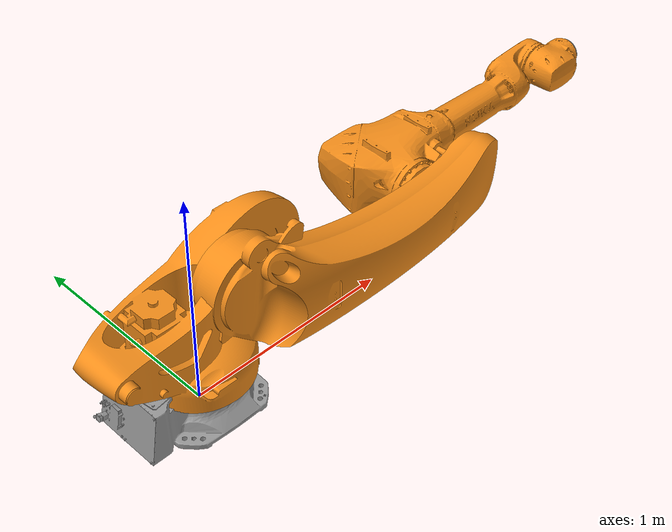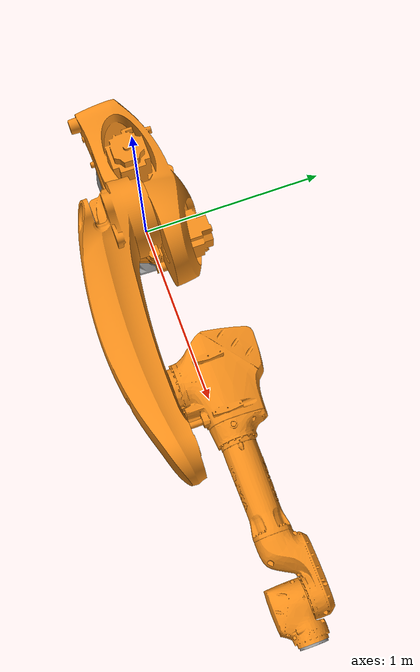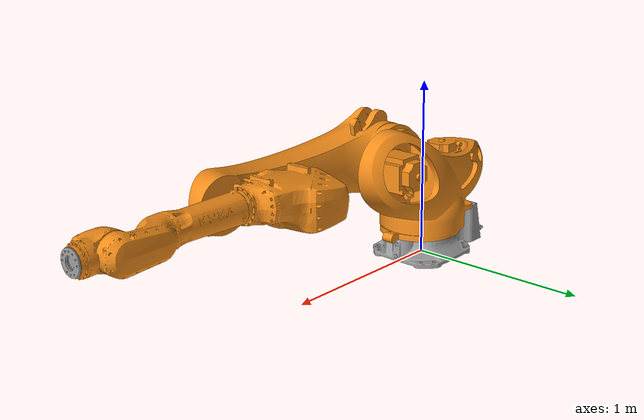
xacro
<?xml version="1.0"?>
<!--Generates a urdf from the macro in kr16_2_macro.xacro -->
<robot name="kuka_kr70_r2100" xmlns:xacro="http://wiki.ros.org/xacro">

  <link name="world"/>
  <joint name="world_joint" type="fixed">
    <parent link="world"/>
    <child link="base_link"/>
  </joint>
  <xacro:include filename="$(find kuka_kr70_support)/urdf/kr70_r2100_macro.xacro" />
  <xacro:kuka_kr70_r2100 prefix=""/>
      <gazebo>
      <plugin name="ros_control" filename="libgazebo_ros_control.so">
		    <robotParam>robot_description</robotParam>
        <controlPeriod>0.001</controlPeriod>
	      <robotSimType>gazebo_ros_control/DefaultRobotHWSim</robotSimType>
		    <legacyModeNS>true</legacyModeNS>
      </plugin>
    </gazebo>
</robot>

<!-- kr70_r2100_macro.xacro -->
<robot xmlns:xacro="http://wiki.ros.org/xacro">
  <xacro:include filename="$(find kuka_resources)/urdf/common_constants.xacro"/>
  <xacro:include filename="$(find kuka_resources)/urdf/common_materials.xacro"/>

  <xacro:macro name="kuka_kr70_r2100" params="prefix">
    <!-- LINKS -->
    <!-- base link -->

    <xacro:macro name="cylinder_inertia_z_aligned" params="m r h">
      <inertia  ixx="${m*(3*r*r+h*h)/12}" ixy = "0" ixz = "0"
                iyy="${m*(3*r*r+h*h)/12}" iyz = "0"
                izz="${m*r*r/2}" />
    </xacro:macro>

    <link name="${prefix}base_link">
      <inertial>
        <origin xyz="0 0 0.1" rpy="0 0 0"/>
        <mass value="200"/>
         <xacro:cylinder_inertia_z_aligned  m="200" r="0.3" h="0.2" />
      </inertial>
      <visual>
        <origin xyz="0 0 0" rpy="0 0 0"/>
        <geometry>
          <mesh filename="package://kuka_kr70_support/meshes/kuka_kr70_r2100/visual/base_link.stl" />
        </geometry>
        <xacro:material_kuka_pedestal />
      </visual>
      <collision>
        <origin xyz="0 0 0" rpy="0 0 0"/>
        <geometry>
          <mesh filename="package://kuka_kr70_support/meshes/kuka_kr70_r2100/collision/base_link.stl" />
        </geometry>
      </collision>
    </link>
    <gazebo reference="${prefix}base_link">
      <material>Gazebo/Gray</material>
    </gazebo>
    <!-- link 1 (A1) -->
    <link name="${prefix}link_1">
      <inertial>
        <origin xyz="0 0 0" rpy="0 0 0"/>
        <mass value="150"/>
         <xacro:cylinder_inertia_z_aligned  m="150" r="0.15" h="0.5" />
      </inertial>
      <visual>
        <origin xyz="0 0 0" rpy="0 0 0"/>
        <geometry>
          <mesh filename="package://kuka_kr70_support/meshes/kuka_kr70_r2100/visual/link_1.stl" />
        </geometry>
        <xacro:material_kuka_orange />
      </visual>
      <collision>
        <origin xyz="0 0 0" rpy="0 0 0"/>
        <geometry>
          <mesh filename="package://kuka_kr70_support/meshes/kuka_kr70_r2100/collision/link_1.stl" />
        </geometry>
      </collision>
    </link>
    <gazebo reference="${prefix}link_1">
      <material>Gazebo/Orange</material>
    </gazebo>
    <!-- link 2 -->
    <link name="${prefix}link_2">
      <inertial>
        <origin xyz="0.5 -0.2 0" rpy="0 ${pi/2.0} 0"/>
        <mass value="50"/>
         <xacro:cylinder_inertia_z_aligned  m="50" r="0.1" h="1.0" />
      </inertial>
      <visual>
        <origin xyz="0 0 0" rpy="0 0 0"/>
        <geometry>
          <mesh filename="package://kuka_kr70_support/meshes/kuka_kr70_r2100/visual/link_2.stl"/>
        </geometry>
        <xacro:material_kuka_orange />
      </visual>
      <collision>
        <origin xyz="0 0 0" rpy="0 0 0"/>
        <geometry>
          <mesh filename="package://kuka_kr70_support/meshes/kuka_kr70_r2100/collision/link_2.stl" />
        </geometry>
      </collision>
    </link>
    <gazebo reference="${prefix}link_2">
      <material>Gazebo/Orange</material>
    </gazebo>
    <!-- link 3 -->
    <link name="${prefix}link_3">
      <inertial>
        <origin xyz="0 0 0" rpy="0 ${pi/2.0} 0"/>
        <mass value="50"/>
         <xacro:cylinder_inertia_z_aligned  m="50" r="0.2" h="0.4" />
      </inertial>
      <visual>
        <origin xyz="0 0 0" rpy="0 0 0"/>
        <geometry>
          <mesh filename="package://kuka_kr70_support/meshes/kuka_kr70_r2100/visual/link_3.stl" />
        </geometry>
        <xacro:material_kuka_orange />
      </visual>
      <collision>
        <origin xyz="0 0 0" rpy="0 0 0"/>
        <geometry>
          <mesh filename="package://kuka_kr70_support/meshes/kuka_kr70_r2100/collision/link_3.stl" />
        </geometry>
      </collision>
    </link>
    <gazebo reference="${prefix}link_3">
      <material>Gazebo/Orange</material>
    </gazebo>
    <!-- link 4 -->
    <link name="${prefix}link_4">
      <inertial>
        <origin xyz="0.55 0 0" rpy="0 ${pi/2.0} 0"/>
        <mass value="30"/>
         <xacro:cylinder_inertia_z_aligned  m="30" r="0.1" h="0.7" />
      </inertial>
      <visual>
        <origin xyz="0 0 0" rpy="0 0 0"/>
        <geometry>
          <mesh filename="package://kuka_kr70_support/meshes/kuka_kr70_r2100/visual/link_4.stl" />
        </geometry>
        <xacro:material_kuka_orange />
      </visual>
      <collision>
        <origin xyz="0 0 0" rpy="0 0 0"/>
        <geometry>
          <mesh filename="package://kuka_kr70_support/meshes/kuka_kr70_r2100/collision/link_4.stl" />
        </geometry>
      </collision>
    </link>
    <gazebo reference="${prefix}link_4">
      <material>Gazebo/Orange</material>
    </gazebo>
    <!-- link 5 -->
    <link name="${prefix}link_5">
      <inertial>
        <origin xyz="0 0 0" rpy="0 0 0"/>
        <mass value="5"/>
         <xacro:cylinder_inertia_z_aligned  m="5" r="0.1" h="0.15" />
      </inertial>
      <visual>
        <origin xyz="0 0 0" rpy="0 0 0"/>
        <geometry>
          <mesh filename="package://kuka_kr70_support/meshes/kuka_kr70_r2100/visual/link_5.stl" />
        </geometry>
        <xacro:material_kuka_orange />
      </visual>
      <collision>
        <origin xyz="0 0 0" rpy="0 0 0"/>
        <geometry>
          <mesh filename="package://kuka_kr70_support/meshes/kuka_kr70_r2100/collision/link_5.stl" />
        </geometry>
      </collision>
    </link>
    <gazebo reference="${prefix}link_5">
      <material>Gazebo/Orange</material>
    </gazebo>
    <!-- link 6 -->
    <link name="${prefix}link_6">
      <inertial>
        <origin xyz="0 0 0" rpy="0 ${pi/2.0} 0"/>
        <mass value="2"/>
         <xacro:cylinder_inertia_z_aligned  m="2" r="0.05" h="0.05" />
      </inertial>
      <visual>
        <origin xyz="0 0 0" rpy="0 0 0"/>
        <geometry>
          <mesh filename="package://kuka_kr70_support/meshes/kuka_kr70_r2100/visual/link_6.stl" />
        </geometry>
        <xacro:material_kuka_pedestal />
      </visual>
      <collision>
        <origin xyz="0 0 0" rpy="0 0 0"/>
        <geometry>
          <mesh filename="package://kuka_kr70_support/meshes/kuka_kr70_r2100/collision/link_6.stl" />
        </geometry>
      </collision>
    </link>
    <gazebo reference="${prefix}link_6">
      <material>Gazebo/Gray</material>
    </gazebo>
    <!-- tool 0 -->
    <!-- This frame corresponds to the $FLANGE coordinate system in KUKA KRC controllers. -->
    <link name="${prefix}tool0"/>
    <!-- END LINKS -->

    <!-- JOINTS -->
    <!-- joint 1 (A1) -->
    <joint name="${prefix}joint_a1" type="revolute">
      <origin xyz="0 0 0.575" rpy="0 0 0"/>
      <parent link="${prefix}base_link"/>
      <child link="${prefix}link_1"/>
      <axis xyz="0 0 -1"/>
      <limit effort="1000" lower="${radians(-185)}" upper="${radians(185)}" velocity="${radians(180)}"/>
    </joint>
    <!-- joint 2 (A2) -->
    <joint name="${prefix}joint_a2" type="revolute">
      <origin xyz="0.175 0 0" rpy="0 0 0"/>
      <parent link="${prefix}link_1"/>
      <child link="${prefix}link_2"/>
      <axis xyz="0 1 0"/>
      <limit effort="1000" lower="${radians(-175)}" upper="${radians(60)}" velocity="${radians(158)}"/>
    </joint>
    <!-- joint 3 (A3) -->
    <joint name="${prefix}joint_a3" type="revolute">
      <origin xyz="0.890 0 0.0" rpy="0 0 0"/>
      <parent link="${prefix}link_2"/>
      <child link="${prefix}link_3"/>
      <axis xyz="0 1 0"/>
      <limit effort="1000" lower="${radians(-120)}" upper="${radians(165)}" velocity="${radians(160)}"/>
    </joint>
    <!-- joint 4 (A4) -->
    <joint name="${prefix}joint_a4" type="revolute">
      <origin xyz="0.0 0 0.05" rpy="0 0 0"/>
      <parent link="${prefix}link_3"/>
      <child link="${prefix}link_4"/>
      <axis xyz="-1 0 0"/>
      <limit effort="1000" lower="${radians(-180)}" upper="${radians(180)}" velocity="${radians(230)}"/>
    </joint>
    <!-- joint 5 (A5) -->
    <joint name="${prefix}joint_a5" type="revolute">
      <origin xyz="1.035 0 0" rpy="0 0 0"/>
      <parent link="${prefix}link_4"/>
      <child link="${prefix}link_5"/>
      <axis xyz="0 1 0"/>
      <limit effort="1000" lower="${radians(-125)}" upper="${radians(125)}" velocity="${radians(230)}"/>
    </joint>
    <!-- joint 6 (A6) -->
    <joint name="${prefix}joint_a6" type="revolute">
      <origin xyz="0.185 0 0" rpy="0 0 0"/>
      <parent link="${prefix}link_5"/>
      <child link="${prefix}link_6"/>
      <axis xyz="-1 0 0"/>
      <limit effort="1000" lower="${radians(-350)}" upper="${radians(350)}" velocity="${radians(320)}"/>
    </joint>
    <!-- tool frame - fixed frame -->
    <joint name="${prefix}joint_a6-tool0" type="fixed">
      <parent link="${prefix}link_6"/>
      <child link="${prefix}tool0"/>
      <origin xyz="0.0 0 0" rpy="0 ${radians(90)} 0"/>
    </joint>
    <!-- END JOINTS -->

    <!-- ROS base_link to KUKA $ROBROOT coordinate system transform -->
    <link name="${prefix}base" />
    <joint name="${prefix}base_link-base" type="fixed">
      <origin xyz="0 0 0" rpy="0 0 0"/>
      <parent link="${prefix}base_link"/>
      <child link="${prefix}base"/>
    </joint>

    <!-- Transmissions -->
    <transmission name="${prefix}joint_a1_trans">
      <type>transmission_interface/SimpleTransmission</type>
      <joint name="${prefix}joint_a1">
        <hardwareInterface>hardware_interface/PositionJointInterface</hardwareInterface>
      </joint>
      <actuator name="${prefix}joint_a1_actuator">
        <mechanicalReduction>1</mechanicalReduction>
        <motorTorqueConstant>1</motorTorqueConstant>
      </actuator>
    </transmission>

    <transmission name="${prefix}joint_a2_trans">
      <type>transmission_interface/SimpleTransmission</type>
      <joint name="${prefix}joint_a2">
        <hardwareInterface>hardware_interface/PositionJointInterface</hardwareInterface>
      </joint>
      <actuator name="${prefix}joint_a2_actuator">
        <mechanicalReduction>1</mechanicalReduction>
        <motorTorqueConstant>1</motorTorqueConstant>
      </actuator>
    </transmission>

    <transmission name="${prefix}joint_a3_trans">
      <type>transmission_interface/SimpleTransmission</type>
      <joint name="${prefix}joint_a3">
        <hardwareInterface>hardware_interface/PositionJointInterface</hardwareInterface>
      </joint>
      <actuator name="${prefix}joint_a3_actuator">
        <mechanicalReduction>1</mechanicalReduction>
        <motorTorqueConstant>1</motorTorqueConstant>
      </actuator>
    </transmission>

    <transmission name="${prefix}joint_a4_trans">
      <type>transmission_interface/SimpleTransmission</type>
      <joint name="${prefix}joint_a4">
        <hardwareInterface>hardware_interface/PositionJointInterface</hardwareInterface>
      </joint>
      <actuator name="${prefix}joint_a4_actuator">
        <mechanicalReduction>1</mechanicalReduction>
        <motorTorqueConstant>1</motorTorqueConstant>
      </actuator>
    </transmission>

    <transmission name="${prefix}joint_a5_trans">
      <type>transmission_interface/SimpleTransmission</type>
      <joint name="${prefix}joint_a5">
        <hardwareInterface>hardware_interface/PositionJointInterface</hardwareInterface>
      </joint>
      <actuator name="${prefix}joint_a5_actuator">
        <mechanicalReduction>1</mechanicalReduction>
        <motorTorqueConstant>1</motorTorqueConstant>
      </actuator>
    </transmission>

    <transmission name="${prefix}joint_a6_trans">
      <type>transmission_interface/SimpleTransmission</type>
      <joint name="${prefix}joint_a6">
        <hardwareInterface>hardware_interface/PositionJointInterface</hardwareInterface>
      </joint>
      <actuator name="${prefix}joint_a6_actuator">
        <mechanicalReduction>1</mechanicalReduction>
        <motorTorqueConstant>1</motorTorqueConstant>
      </actuator>
    </transmission>

  </xacro:macro>
</robot>
